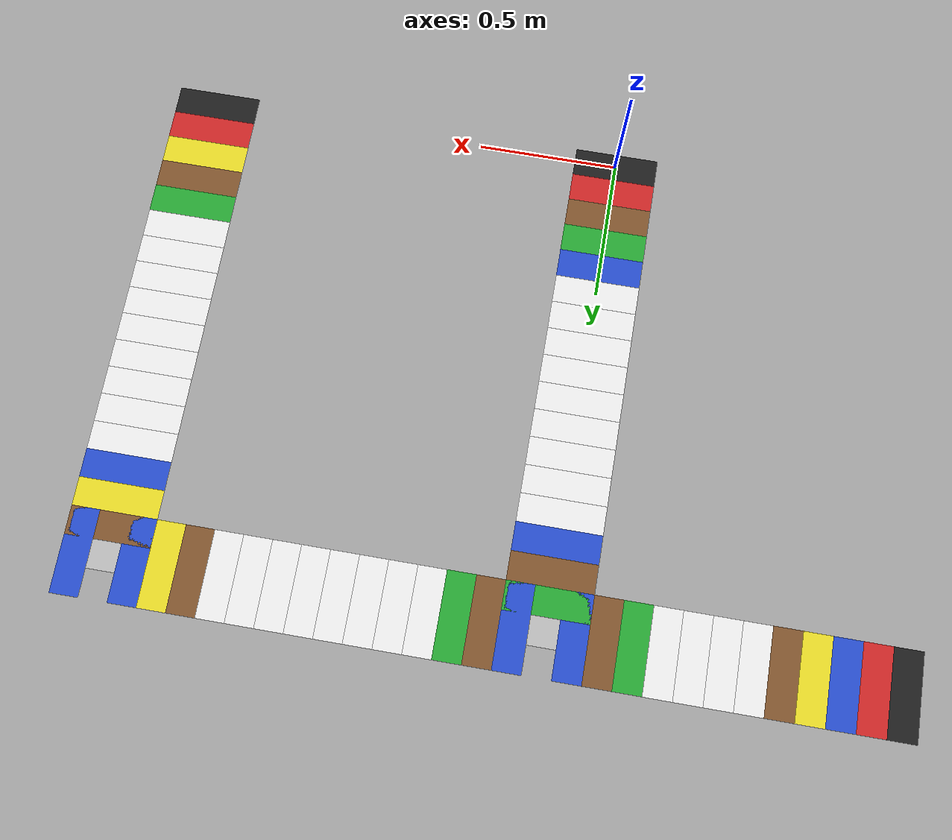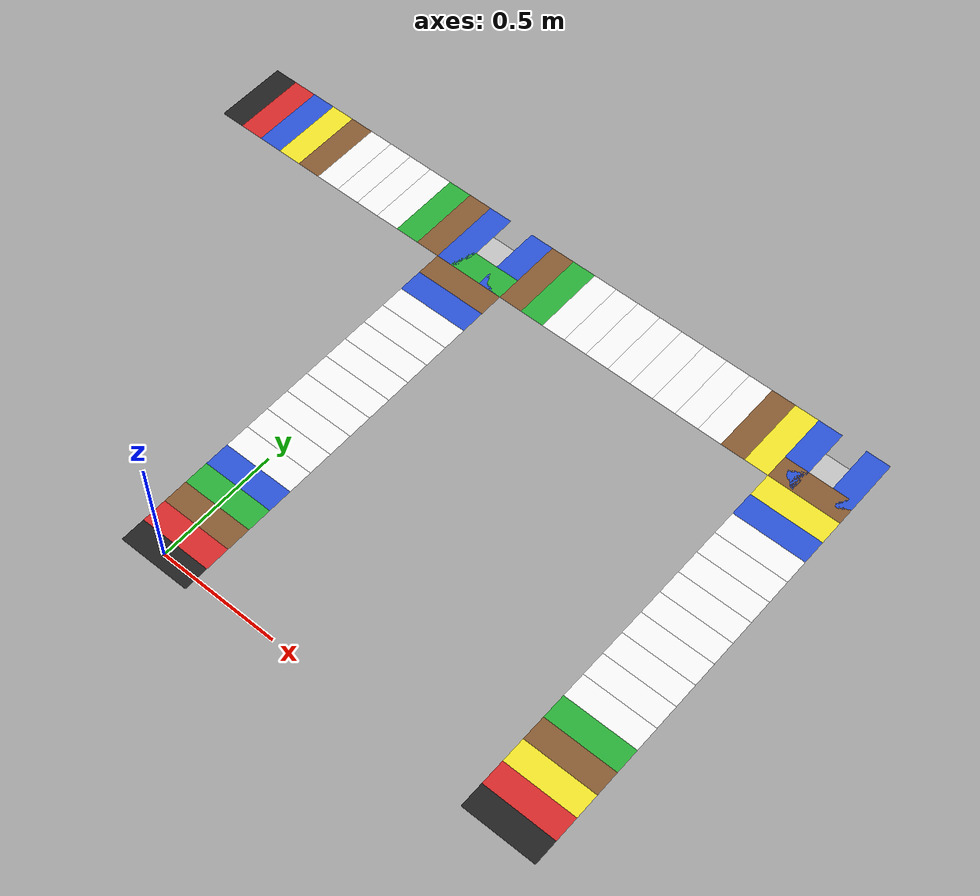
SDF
<sdf version="1.4">
 <world name="maskor_ev3_challenge">
  <model name="tileAC3">
   <pose>0 0 0.001 0 -0 0</pose>
   <static>1</static>
   <link name="link">
    <pose>0 0 0.001 0 -0 0</pose>
    <visual name="visual">
     <geometry><mesh><uri>model://maskor_ev3_tile/meshes/ev3_tile.dae</uri><scale>5 5 5</scale></mesh></geometry>
     <material>
      <script>
       <uri>model://maskor_ev3_tile/materials/scripts</uri>
       <uri>model://maskor_ev3_tile/materials/textures</uri>
       <name>black</name>
      </script>
     </material>
    </visual>
    <velocity_decay><linear>0</linear><angular>0</angular></velocity_decay>
   </link>
  </model>
  <model name="tileAC4">
   <pose>0 0.1 0.001 0 -0 0</pose>
   <static>1</static>
   <link name="link">
    <pose>0 0 0.001 0 -0 0</pose>
    <visual name="visual">
     <geometry><mesh><uri>model://maskor_ev3_tile/meshes/ev3_tile.dae</uri><scale>5 5 5</scale></mesh></geometry>
     <material>
      <script>
       <uri>model://maskor_ev3_tile/materials/scripts</uri>
       <uri>model://maskor_ev3_tile/materials/textures</uri>
       <name>red</name>
      </script>
     </material>
    </visual>
    <velocity_decay><linear>0</linear><angular>0</angular></velocity_decay>
   </link>
  </model>
  <model name="tileAC5">
   <pose>0 0.2 0.001 0 -0 0</pose>
   <static>1</static>
   <link name="link">
    <pose>0 0 0.001 0 -0 0</pose>
    <visual name="visual">
     <geometry><mesh><uri>model://maskor_ev3_tile/meshes/ev3_tile.dae</uri><scale>5 5 5</scale></mesh></geometry>
     <material>
      <script>
       <uri>model://maskor_ev3_tile/materials/scripts</uri>
       <uri>model://maskor_ev3_tile/materials/textures</uri>
       <name>brown</name>
      </script>
     </material>
    </visual>
    <velocity_decay><linear>0</linear><angular>0</angular></velocity_decay>
   </link>
  </model>
  <model name="tileAC6">
   <pose>0 0.3 0.001 0 -0 0</pose>
   <static>1</static>
   <link name="link">
    <pose>0 0 0.001 0 -0 0</pose>
    <visual name="visual">
     <geometry><mesh><uri>model://maskor_ev3_tile/meshes/ev3_tile.dae</uri><scale>5 5 5</scale></mesh></geometry>
     <material>
      <script>
       <uri>model://maskor_ev3_tile/materials/scripts</uri>
       <uri>model://maskor_ev3_tile/materials/textures</uri>
       <name>green</name>
      </script>
     </material>
    </visual>
    <velocity_decay><linear>0</linear><angular>0</angular></velocity_decay>
   </link>
  </model>
  <model name="tileAC7">
   <pose>0 0.4 0.001 0 -0 0</pose>
   <static>1</static>
   <link name="link">
    <pose>0 0 0.001 0 -0 0</pose>
    <visual name="visual">
     <geometry><mesh><uri>model://maskor_ev3_tile/meshes/ev3_tile.dae</uri><scale>5 5 5</scale></mesh></geometry>
     <material>
      <script>
       <uri>model://maskor_ev3_tile/materials/scripts</uri>
       <uri>model://maskor_ev3_tile/materials/textures</uri>
       <name>blue</name>
      </script>
     </material>
    </visual>
    <velocity_decay><linear>0</linear><angular>0</angular></velocity_decay>
   </link>
  </model>
  <model name="tileAC8">
   <pose>0 0.5 0.001 0 -0 0</pose>
   <static>1</static>
   <link name="link">
    <pose>0 0 0.001 0 -0 0</pose>
    <visual name="visual">
     <geometry><mesh><uri>model://maskor_ev3_tile/meshes/ev3_tile.dae</uri><scale>5 5 5</scale></mesh></geometry>
     <material>
      <script>
       <uri>model://maskor_ev3_tile/materials/scripts</uri>
       <uri>model://maskor_ev3_tile/materials/textures</uri>
       <name>white</name>
      </script>
     </material>
    </visual>
    <velocity_decay><linear>0</linear><angular>0</angular></velocity_decay>
   </link>
  </model>
  <model name="tileAC9">
   <pose>0 0.6 0.001 0 -0 0</pose>
   <static>1</static>
   <link name="link">
    <pose>0 0 0.001 0 -0 0</pose>
    <visual name="visual">
     <geometry><mesh><uri>model://maskor_ev3_tile/meshes/ev3_tile.dae</uri><scale>5 5 5</scale></mesh></geometry>
     <material>
      <script>
       <uri>model://maskor_ev3_tile/materials/scripts</uri>
       <uri>model://maskor_ev3_tile/materials/textures</uri>
       <name>white</name>
      </script>
     </material>
    </visual>
    <velocity_decay><linear>0</linear><angular>0</angular></velocity_decay>
   </link>
  </model>
  <model name="tileAC10">
   <pose>0 0.7 0.001 0 -0 0</pose>
   <static>1</static>
   <link name="link">
    <pose>0 0 0.001 0 -0 0</pose>
    <visual name="visual">
     <geometry><mesh><uri>model://maskor_ev3_tile/meshes/ev3_tile.dae</uri><scale>5 5 5</scale></mesh></geometry>
     <material>
      <script>
       <uri>model://maskor_ev3_tile/materials/scripts</uri>
       <uri>model://maskor_ev3_tile/materials/textures</uri>
       <name>white</name>
      </script>
     </material>
    </visual>
    <velocity_decay><linear>0</linear><angular>0</angular></velocity_decay>
   </link>
  </model>
  <model name="tileAC11">
   <pose>0 0.8 0.001 0 -0 0</pose>
   <static>1</static>
   <link name="link">
    <pose>0 0 0.001 0 -0 0</pose>
    <visual name="visual">
     <geometry><mesh><uri>model://maskor_ev3_tile/meshes/ev3_tile.dae</uri><scale>5 5 5</scale></mesh></geometry>
     <material>
      <script>
       <uri>model://maskor_ev3_tile/materials/scripts</uri>
       <uri>model://maskor_ev3_tile/materials/textures</uri>
       <name>white</name>
      </script>
     </material>
    </visual>
    <velocity_decay><linear>0</linear><angular>0</angular></velocity_decay>
   </link>
  </model>
  <model name="tileAC12">
   <pose>0 0.9 0.001 0 -0 0</pose>
   <static>1</static>
   <link name="link">
    <pose>0 0 0.001 0 -0 0</pose>
    <visual name="visual">
     <geometry><mesh><uri>model://maskor_ev3_tile/meshes/ev3_tile.dae</uri><scale>5 5 5</scale></mesh></geometry>
     <material>
      <script>
       <uri>model://maskor_ev3_tile/materials/scripts</uri>
       <uri>model://maskor_ev3_tile/materials/textures</uri>
       <name>white</name>
      </script>
     </material>
    </visual>
    <velocity_decay><linear>0</linear><angular>0</angular></velocity_decay>
   </link>
  </model>
  <model name="tileAC13">
   <pose>0 1 0.001 0 -0 0</pose>
   <static>1</static>
   <link name="link">
    <pose>0 0 0.001 0 -0 0</pose>
    <visual name="visual">
     <geometry><mesh><uri>model://maskor_ev3_tile/meshes/ev3_tile.dae</uri><scale>5 5 5</scale></mesh></geometry>
     <material>
      <script>
       <uri>model://maskor_ev3_tile/materials/scripts</uri>
       <uri>model://maskor_ev3_tile/materials/textures</uri>
       <name>white</name>
      </script>
     </material>
    </visual>
    <velocity_decay><linear>0</linear><angular>0</angular></velocity_decay>
   </link>
  </model>
  <model name="tileAC14">
   <pose>0 1.1 0.001 0 -0 0</pose>
   <static>1</static>
   <link name="link">
    <pose>0 0 0.001 0 -0 0</pose>
    <visual name="visual">
     <geometry><mesh><uri>model://maskor_ev3_tile/meshes/ev3_tile.dae</uri><scale>5 5 5</scale></mesh></geometry>
     <material>
      <script>
       <uri>model://maskor_ev3_tile/materials/scripts</uri>
       <uri>model://maskor_ev3_tile/materials/textures</uri>
       <name>white</name>
      </script>
     </material>
    </visual>
    <velocity_decay><linear>0</linear><angular>0</angular></velocity_decay>
   </link>
  </model>
  <model name="tileAC15">
   <pose>0 1.2 0.001 0 -0 0</pose>
   <static>1</static>
   <link name="link">
    <pose>0 0 0.001 0 -0 0</pose>
    <visual name="visual">
     <geometry><mesh><uri>model://maskor_ev3_tile/meshes/ev3_tile.dae</uri><scale>5 5 5</scale></mesh></geometry>
     <material>
      <script>
       <uri>model://maskor_ev3_tile/materials/scripts</uri>
       <uri>model://maskor_ev3_tile/materials/textures</uri>
       <name>white</name>
      </script>
     </material>
    </visual>
    <velocity_decay><linear>0</linear><angular>0</angular></velocity_decay>
   </link>
  </model>
  <model name="tileAC16">
   <pose>0 1.3 0.001 0 -0 0</pose>
   <static>1</static>
   <link name="link">
    <pose>0 0 0.001 0 -0 0</pose>
    <visual name="visual">
     <geometry><mesh><uri>model://maskor_ev3_tile/meshes/ev3_tile.dae</uri><scale>5 5 5</scale></mesh></geometry>
     <material>
      <script>
       <uri>model://maskor_ev3_tile/materials/scripts</uri>
       <uri>model://maskor_ev3_tile/materials/textures</uri>
       <name>white</name>
      </script>
     </material>
    </visual>
    <velocity_decay><linear>0</linear><angular>0</angular></velocity_decay>
   </link>
  </model>
  <model name="tileAC17">
   <pose>0 1.4 0.001 0 -0 0</pose>
   <static>1</static>
   <link name="link">
    <pose>0 0 0.001 0 -0 0</pose>
    <visual name="visual">
     <geometry><mesh><uri>model://maskor_ev3_tile/meshes/ev3_tile.dae</uri><scale>5 5 5</scale></mesh></geometry>
     <material>
      <script>
       <uri>model://maskor_ev3_tile/materials/scripts</uri>
       <uri>model://maskor_ev3_tile/materials/textures</uri>
       <name>blue</name>
      </script>
     </material>
    </visual>
    <velocity_decay><linear>0</linear><angular>0</angular></velocity_decay>
   </link>
  </model>
  <model name="tileAC18">
   <pose>0 1.5 0.001 0 -0 0</pose>
   <static>1</static>
   <link name="link">
    <pose>0 0 0.001 0 -0 0</pose>
    <visual name="visual">
     <geometry><mesh><uri>model://maskor_ev3_tile/meshes/ev3_tile.dae</uri><scale>5 5 5</scale></mesh></geometry>
     <material>
      <script>
       <uri>model://maskor_ev3_tile/materials/scripts</uri>
       <uri>model://maskor_ev3_tile/materials/textures</uri>
       <name>brown</name>
      </script>
     </material>
    </visual>
    <velocity_decay><linear>0</linear><angular>0</angular></velocity_decay>
   </link>
  </model>
  <model name="tileAC19">
   <pose>0 1.6 0.001 0 -0 0</pose>
   <static>1</static>
   <link name="link">
    <pose>0 0 0.001 0 -0 0</pose>
    <visual name="visual">
     <geometry><mesh><uri>model://maskor_ev3_tile/meshes/ev3_tile.dae</uri><scale>5 5 5</scale></mesh></geometry>
     <material>
      <script>
       <uri>model://maskor_ev3_tile/materials/scripts</uri>
       <uri>model://maskor_ev3_tile/materials/textures</uri>
       <name>green</name>
      </script>
     </material>
    </visual>
    <velocity_decay><linear>0</linear><angular>0</angular></velocity_decay>
   </link>
  </model>
  <model name="tileAC20">
   <pose>0 1.7 0.002 0 -0 0</pose>
   <static>1</static>
   <link name="link">
    <visual name="visual">
     <geometry>
      <mesh><uri>model://maskor_ev3_tile_center/meshes/ev3_tile_center.dae</uri><scale>5 5 5</scale></mesh>
     </geometry>
     <material>
      <script>
       <uri>model://maskor_ev3_tile_center/materials/scripts</uri>
       <uri>model://maskor_ev3_tile_center/materials/textures</uri>
       <name>center</name>
      </script>
     </material>
    </visual>
    <velocity_decay><linear>0</linear><angular>0</angular></velocity_decay>
   </link>
  </model>
  <model name="tileBD3">
   <pose>1.5 0 0.001 0 -0 0</pose>
   <static>1</static>
   <link name="link">
    <pose>0 0 0.001 0 -0 0</pose>
    <visual name="visual">
     <geometry><mesh><uri>model://maskor_ev3_tile/meshes/ev3_tile.dae</uri><scale>5 5 5</scale></mesh></geometry>
     <material>
      <script>
       <uri>model://maskor_ev3_tile/materials/scripts</uri>
       <uri>model://maskor_ev3_tile/materials/textures</uri>
       <name>black</name>
      </script>
     </material>
    </visual>
    <velocity_decay><linear>0</linear><angular>0</angular></velocity_decay>
   </link>
  </model>
  <model name="tileBD4">
   <pose>1.5 0.1 0.001 0 -0 0</pose>
   <static>1</static>
   <link name="link">
    <pose>0 0 0.001 0 -0 0</pose>
    <visual name="visual">
     <geometry><mesh><uri>model://maskor_ev3_tile/meshes/ev3_tile.dae</uri><scale>5 5 5</scale></mesh></geometry>
     <material>
      <script>
       <uri>model://maskor_ev3_tile/materials/scripts</uri>
       <uri>model://maskor_ev3_tile/materials/textures</uri>
       <name>red</name>
      </script>
     </material>
    </visual>
    <velocity_decay><linear>0</linear><angular>0</angular></velocity_decay>
   </link>
  </model>
  <model name="tileBD5">
   <pose>1.5 0.2 0.001 0 -0 0</pose>
   <static>1</static>
   <link name="link">
    <pose>0 0 0.001 0 -0 0</pose>
    <visual name="visual">
     <geometry><mesh><uri>model://maskor_ev3_tile/meshes/ev3_tile.dae</uri><scale>5 5 5</scale></mesh></geometry>
     <material>
      <script>
       <uri>model://maskor_ev3_tile/materials/scripts</uri>
       <uri>model://maskor_ev3_tile/materials/textures</uri>
       <name>yellow</name>
      </script>
     </material>
    </visual>
    <velocity_decay><linear>0</linear><angular>0</angular></velocity_decay>
   </link>
  </model>
  <model name="tileBD6">
   <pose>1.5 0.3 0.001 0 -0 0</pose>
   <static>1</static>
   <link name="link">
    <pose>0 0 0.001 0 -0 0</pose>
    <visual name="visual">
     <geometry><mesh><uri>model://maskor_ev3_tile/meshes/ev3_tile.dae</uri><scale>5 5 5</scale></mesh></geometry>
     <material>
      <script>
       <uri>model://maskor_ev3_tile/materials/scripts</uri>
       <uri>model://maskor_ev3_tile/materials/textures</uri>
       <name>brown</name>
      </script>
     </material>
    </visual>
    <velocity_decay><linear>0</linear><angular>0</angular></velocity_decay>
   </link>
  </model>
  <model name="tileBD7">
   <pose>1.5 0.4 0.001 0 -0 0</pose>
   <static>1</static>
   <link name="link">
    <pose>0 0 0.001 0 -0 0</pose>
    <visual name="visual">
     <geometry><mesh><uri>model://maskor_ev3_tile/meshes/ev3_tile.dae</uri><scale>5 5 5</scale></mesh></geometry>
     <material>
      <script>
       <uri>model://maskor_ev3_tile/materials/scripts</uri>
       <uri>model://maskor_ev3_tile/materials/textures</uri>
       <name>green</name>
      </script>
     </material>
    </visual>
    <velocity_decay><linear>0</linear><angular>0</angular></velocity_decay>
   </link>
  </model>
  <model name="tileBD8">
   <pose>1.5 0.5 0.001 0 -0 0</pose>
   <static>1</static>
   <link name="link">
    <pose>0 0 0.001 0 -0 0</pose>
    <visual name="visual">
     <geometry><mesh><uri>model://maskor_ev3_tile/meshes/ev3_tile.dae</uri><scale>5 5 5</scale></mesh></geometry>
     <material>
      <script>
       <uri>model://maskor_ev3_tile/materials/scripts</uri>
       <uri>model://maskor_ev3_tile/materials/textures</uri>
       <name>white</name>
      </script>
     </material>
    </visual>
    <velocity_decay><linear>0</linear><angular>0</angular></velocity_decay>
   </link>
  </model>
  <model name="tileBD9">
   <pose>1.5 0.6 0.001 0 -0 0</pose>
   <static>1</static>
   <link name="link">
    <pose>0 0 0.001 0 -0 0</pose>
    <visual name="visual">
     <geometry><mesh><uri>model://maskor_ev3_tile/meshes/ev3_tile.dae</uri><scale>5 5 5</scale></mesh></geometry>
     <material>
      <script>
       <uri>model://maskor_ev3_tile/materials/scripts</uri>
       <uri>model://maskor_ev3_tile/materials/textures</uri>
       <name>white</name>
      </script>
     </material>
    </visual>
    <velocity_decay><linear>0</linear><angular>0</angular></velocity_decay>
   </link>
  </model>
  <model name="tileBD10">
   <pose>1.5 0.7 0.001 0 -0 0</pose>
   <static>1</static>
   <link name="link">
    <pose>0 0 0.001 0 -0 0</pose>
    <visual name="visual">
     <geometry><mesh><uri>model://maskor_ev3_tile/meshes/ev3_tile.dae</uri><scale>5 5 5</scale></mesh></geometry>
     <material>
      <script>
       <uri>model://maskor_ev3_tile/materials/scripts</uri>
       <uri>model://maskor_ev3_tile/materials/textures</uri>
       <name>white</name>
      </script>
     </material>
    </visual>
    <velocity_decay><linear>0</linear><angular>0</angular></velocity_decay>
   </link>
  </model>
  <model name="tileBD11">
   <pose>1.5 0.8 0.001 0 -0 0</pose>
   <static>1</static>
   <link name="link">
    <pose>0 0 0.001 0 -0 0</pose>
    <visual name="visual">
     <geometry><mesh><uri>model://maskor_ev3_tile/meshes/ev3_tile.dae</uri><scale>5 5 5</scale></mesh></geometry>
     <material>
      <script>
       <uri>model://maskor_ev3_tile/materials/scripts</uri>
       <uri>model://maskor_ev3_tile/materials/textures</uri>
       <name>white</name>
      </script>
     </material>
    </visual>
    <velocity_decay><linear>0</linear><angular>0</angular></velocity_decay>
   </link>
  </model>
  <model name="tileBD12">
   <pose>1.5 0.9 0.001 0 -0 0</pose>
   <static>1</static>
   <link name="link">
    <pose>0 0 0.001 0 -0 0</pose>
    <visual name="visual">
     <geometry><mesh><uri>model://maskor_ev3_tile/meshes/ev3_tile.dae</uri><scale>5 5 5</scale></mesh></geometry>
     <material>
      <script>
       <uri>model://maskor_ev3_tile/materials/scripts</uri>
       <uri>model://maskor_ev3_tile/materials/textures</uri>
       <name>white</name>
      </script>
     </material>
    </visual>
    <velocity_decay><linear>0</linear><angular>0</angular></velocity_decay>
   </link>
  </model>
  <model name="tileBD13">
   <pose>1.5 1 0.001 0 -0 0</pose>
   <static>1</static>
   <link name="link">
    <pose>0 0 0.001 0 -0 0</pose>
    <visual name="visual">
     <geometry><mesh><uri>model://maskor_ev3_tile/meshes/ev3_tile.dae</uri><scale>5 5 5</scale></mesh></geometry>
     <material>
      <script>
       <uri>model://maskor_ev3_tile/materials/scripts</uri>
       <uri>model://maskor_ev3_tile/materials/textures</uri>
       <name>white</name>
      </script>
     </material>
    </visual>
    <velocity_decay><linear>0</linear><angular>0</angular></velocity_decay>
   </link>
  </model>
  <model name="tileBD14">
   <pose>1.5 1.1 0.001 0 -0 0</pose>
   <static>1</static>
   <link name="link">
    <pose>0 0 0.001 0 -0 0</pose>
    <visual name="visual">
     <geometry><mesh><uri>model://maskor_ev3_tile/meshes/ev3_tile.dae</uri><scale>5 5 5</scale></mesh></geometry>
     <material>
      <script>
       <uri>model://maskor_ev3_tile/materials/scripts</uri>
       <uri>model://maskor_ev3_tile/materials/textures</uri>
       <name>white</name>
      </script>
     </material>
    </visual>
    <velocity_decay><linear>0</linear><angular>0</angular></velocity_decay>
   </link>
  </model>
  <model name="tileBD15">
   <pose>1.5 1.2 0.001 0 -0 0</pose>
   <static>1</static>
   <link name="link">
    <pose>0 0 0.001 0 -0 0</pose>
    <visual name="visual">
     <geometry><mesh><uri>model://maskor_ev3_tile/meshes/ev3_tile.dae</uri><scale>5 5 5</scale></mesh></geometry>
     <material>
      <script>
       <uri>model://maskor_ev3_tile/materials/scripts</uri>
       <uri>model://maskor_ev3_tile/materials/textures</uri>
       <name>white</name>
      </script>
     </material>
    </visual>
    <velocity_decay><linear>0</linear><angular>0</angular></velocity_decay>
   </link>
  </model>
  <model name="tileBD16">
   <pose>1.5 1.3 0.001 0 -0 0</pose>
   <static>1</static>
   <link name="link">
    <pose>0 0 0.001 0 -0 0</pose>
    <visual name="visual">
     <geometry><mesh><uri>model://maskor_ev3_tile/meshes/ev3_tile.dae</uri><scale>5 5 5</scale></mesh></geometry>
     <material>
      <script>
       <uri>model://maskor_ev3_tile/materials/scripts</uri>
       <uri>model://maskor_ev3_tile/materials/textures</uri>
       <name>white</name>
      </script>
     </material>
    </visual>
    <velocity_decay><linear>0</linear><angular>0</angular></velocity_decay>
   </link>
  </model>
  <model name="tileBD17">
   <pose>1.5 1.4 0.001 0 -0 0</pose>
   <static>1</static>
   <link name="link">
    <pose>0 0 0.001 0 -0 0</pose>
    <visual name="visual">
     <geometry><mesh><uri>model://maskor_ev3_tile/meshes/ev3_tile.dae</uri><scale>5 5 5</scale></mesh></geometry>
     <material>
      <script>
       <uri>model://maskor_ev3_tile/materials/scripts</uri>
       <uri>model://maskor_ev3_tile/materials/textures</uri>
       <name>blue</name>
      </script>
     </material>
    </visual>
    <velocity_decay><linear>0</linear><angular>0</angular></velocity_decay>
   </link>
  </model>
  <model name="tileBD18">
   <pose>1.5 1.5 0.001 0 -0 0</pose>
   <static>1</static>
   <link name="link">
    <pose>0 0 0.001 0 -0 0</pose>
    <visual name="visual">
     <geometry><mesh><uri>model://maskor_ev3_tile/meshes/ev3_tile.dae</uri><scale>5 5 5</scale></mesh></geometry>
     <material>
      <script>
       <uri>model://maskor_ev3_tile/materials/scripts</uri>
       <uri>model://maskor_ev3_tile/materials/textures</uri>
       <name>yellow</name>
      </script>
     </material>
    </visual>
    <velocity_decay><linear>0</linear><angular>0</angular></velocity_decay>
   </link>
  </model>
  <model name="tileBD19">
   <pose>1.5 1.6 0.001 0 -0 0</pose>
   <static>1</static>
   <link name="link">
    <pose>0 0 0.001 0 -0 0</pose>
    <visual name="visual">
     <geometry><mesh><uri>model://maskor_ev3_tile/meshes/ev3_tile.dae</uri><scale>5 5 5</scale></mesh></geometry>
     <material>
      <script>
       <uri>model://maskor_ev3_tile/materials/scripts</uri>
       <uri>model://maskor_ev3_tile/materials/textures</uri>
       <name>brown</name>
      </script>
     </material>
    </visual>
    <velocity_decay><linear>0</linear><angular>0</angular></velocity_decay>
   </link>
  </model>
  <model name="tileBD20">
   <pose>1.5 1.7 0.002 0 -0 0</pose>
   <static>1</static>
   <link name="link">
    <visual name="visual">
     <geometry>
      <mesh><uri>model://maskor_ev3_tile_center/meshes/ev3_tile_center.dae</uri><scale>5 5 5</scale></mesh>
     </geometry>
     <material>
      <script>
       <uri>model://maskor_ev3_tile_center/materials/scripts</uri>
       <uri>model://maskor_ev3_tile_center/materials/textures</uri>
       <name>center</name>
      </script>
     </material>
    </visual>
    <velocity_decay><linear>0</linear><angular>0</angular></velocity_decay>
   </link>
  </model>
  <model name="tileEF3">
   <pose>-1.2 1.7 0.001 0 -0 1.5708</pose>
   <static>1</static>
   <link name="link">
    <pose>0 0 0.001 0 -0 0</pose>
    <visual name="visual">
     <geometry><mesh><uri>model://maskor_ev3_tile/meshes/ev3_tile.dae</uri><scale>5 5 5</scale></mesh></geometry>
     <material>
      <script>
       <uri>model://maskor_ev3_tile/materials/scripts</uri>
       <uri>model://maskor_ev3_tile/materials/textures</uri>
       <name>black</name>
      </script>
     </material>
    </visual>
    <velocity_decay><linear>0</linear><angular>0</angular></velocity_decay>
   </link>
  </model>
  <model name="tileEF4">
   <pose>-1.1 1.7 0.001 0 -0 1.5708</pose>
   <static>1</static>
   <link name="link">
    <pose>0 0 0.001 0 -0 0</pose>
    <visual name="visual">
     <geometry><mesh><uri>model://maskor_ev3_tile/meshes/ev3_tile.dae</uri><scale>5 5 5</scale></mesh></geometry>
     <material>
      <script>
       <uri>model://maskor_ev3_tile/materials/scripts</uri>
       <uri>model://maskor_ev3_tile/materials/textures</uri>
       <name>red</name>
      </script>
     </material>
    </visual>
    <velocity_decay><linear>0</linear><angular>0</angular></velocity_decay>
   </link>
  </model>
  <model name="tileEF8">
   <pose>-0.7 1.7 0.001 0 -0 1.5708</pose>
   <static>1</static>
   <link name="link">
    <pose>0 0 0.001 0 -0 0</pose>
    <visual name="visual">
     <geometry><mesh><uri>model://maskor_ev3_tile/meshes/ev3_tile.dae</uri><scale>5 5 5</scale></mesh></geometry>
     <material>
      <script>
       <uri>model://maskor_ev3_tile/materials/scripts</uri>
       <uri>model://maskor_ev3_tile/materials/textures</uri>
       <name>white</name>
      </script>
     </material>
    </visual>
    <velocity_decay><linear>0</linear><angular>0</angular></velocity_decay>
   </link>
  </model>
  <model name="tileEF5">
   <pose>-1 1.7 0.001 0 -0 1.5708</pose>
   <static>1</static>
   <link name="link">
    <pose>0 0 0.001 0 -0 0</pose>
    <visual name="visual">
     <geometry><mesh><uri>model://maskor_ev3_tile/meshes/ev3_tile.dae</uri><scale>5 5 5</scale></mesh></geometry>
     <material>
      <script>
       <uri>model://maskor_ev3_tile/materials/scripts</uri>
       <uri>model://maskor_ev3_tile/materials/textures</uri>
       <name>blue</name>
      </script>
     </material>
    </visual>
    <velocity_decay><linear>0</linear><angular>0</angular></velocity_decay>
   </link>
  </model>
  <model name="tileEF10">
   <pose>-0.5 1.7 0.001 0 -0 1.5708</pose>
   <static>1</static>
   <link name="link">
    <pose>0 0 0.001 0 -0 0</pose>
    <visual name="visual">
     <geometry><mesh><uri>model://maskor_ev3_tile/meshes/ev3_tile.dae</uri><scale>5 5 5</scale></mesh></geometry>
     <material>
      <script>
       <uri>model://maskor_ev3_tile/materials/scripts</uri>
       <uri>model://maskor_ev3_tile/materials/textures</uri>
       <name>white</name>
      </script>
     </material>
    </visual>
    <velocity_decay><linear>0</linear><angular>0</angular></velocity_decay>
   </link>
  </model>
  <model name="tileEF6">
   <pose>-0.9 1.7 0.001 0 -0 1.5708</pose>
   <static>1</static>
   <link name="link">
    <pose>0 0 0.001 0 -0 0</pose>
    <visual name="visual">
     <geometry><mesh><uri>model://maskor_ev3_tile/meshes/ev3_tile.dae</uri><scale>5 5 5</scale></mesh></geometry>
     <material>
      <script>
       <uri>model://maskor_ev3_tile/materials/scripts</uri>
       <uri>model://maskor_ev3_tile/materials/textures</uri>
       <name>yellow</name>
      </script>
     </material>
    </visual>
    <velocity_decay><linear>0</linear><angular>0</angular></velocity_decay>
   </link>
  </model>
  <model name="tileEF7">
   <pose>-0.8 1.7 0.001 0 -0 1.5708</pose>
   <static>1</static>
   <link name="link">
    <pose>0 0 0.001 0 -0 0</pose>
    <visual name="visual">
     <geometry><mesh><uri>model://maskor_ev3_tile/meshes/ev3_tile.dae</uri><scale>5 5 5</scale></mesh></geometry>
     <material>
      <script>
       <uri>model://maskor_ev3_tile/materials/scripts</uri>
       <uri>model://maskor_ev3_tile/materials/textures</uri>
       <name>brown</name>
      </script>
     </material>
    </visual>
    <velocity_decay><linear>0</linear><angular>0</angular></velocity_decay>
   </link>
  </model>
  <model name="tileEF9">
   <pose>-0.6 1.7 0.001 0 -0 1.5708</pose>
   <static>1</static>
   <link name="link">
    <pose>0 0 0.001 0 -0 0</pose>
    <visual name="visual">
     <geometry><mesh><uri>model://maskor_ev3_tile/meshes/ev3_tile.dae</uri><scale>5 5 5</scale></mesh></geometry>
     <material>
      <script>
       <uri>model://maskor_ev3_tile/materials/scripts</uri>
       <uri>model://maskor_ev3_tile/materials/textures</uri>
       <name>white</name>
      </script>
     </material>
    </visual>
    <velocity_decay><linear>0</linear><angular>0</angular></velocity_decay>
   </link>
  </model>
  <model name="tileEF11">
   <pose>-0.4 1.7 0.001 0 -0 1.5708</pose>
   <static>1</static>
   <link name="link">
    <pose>0 0 0.001 0 -0 0</pose>
    <visual name="visual">
     <geometry><mesh><uri>model://maskor_ev3_tile/meshes/ev3_tile.dae</uri><scale>5 5 5</scale></mesh></geometry>
     <material>
      <script>
       <uri>model://maskor_ev3_tile/materials/scripts</uri>
       <uri>model://maskor_ev3_tile/materials/textures</uri>
       <name>white</name>
      </script>
     </material>
    </visual>
    <velocity_decay><linear>0</linear><angular>0</angular></velocity_decay>
   </link>
  </model>
  <model name="tileEF12">
   <pose>-0.3 1.7 0.001 0 -0 1.5708</pose>
   <static>1</static>
   <link name="link">
    <pose>0 0 0.001 0 -0 0</pose>
    <visual name="visual">
     <geometry><mesh><uri>model://maskor_ev3_tile/meshes/ev3_tile.dae</uri><scale>5 5 5</scale></mesh></geometry>
     <material>
      <script>
       <uri>model://maskor_ev3_tile/materials/scripts</uri>
       <uri>model://maskor_ev3_tile/materials/textures</uri>
       <name>green</name>
      </script>
     </material>
    </visual>
    <velocity_decay><linear>0</linear><angular>0</angular></velocity_decay>
   </link>
  </model>
  <model name="tileEF13">
   <pose>-0.2 1.7 0.001 0 -0 1.5708</pose>
   <static>1</static>
   <link name="link">
    <pose>0 0 0.001 0 -0 0</pose>
    <visual name="visual">
     <geometry><mesh><uri>model://maskor_ev3_tile/meshes/ev3_tile.dae</uri><scale>5 5 5</scale></mesh></geometry>
     <material>
      <script>
       <uri>model://maskor_ev3_tile/materials/scripts</uri>
       <uri>model://maskor_ev3_tile/materials/textures</uri>
       <name>brown</name>
      </script>
     </material>
    </visual>
    <velocity_decay><linear>0</linear><angular>0</angular></velocity_decay>
   </link>
  </model>
  <model name="tileEF14">
   <pose>-0.1 1.7 0.001 0 -0 1.5708</pose>
   <static>1</static>
   <link name="link">
    <pose>0 0 0.001 0 -0 0</pose>
    <visual name="visual">
     <geometry><mesh><uri>model://maskor_ev3_tile/meshes/ev3_tile.dae</uri><scale>5 5 5</scale></mesh></geometry>
     <material>
      <script>
       <uri>model://maskor_ev3_tile/materials/scripts</uri>
       <uri>model://maskor_ev3_tile/materials/textures</uri>
       <name>blue</name>
      </script>
     </material>
    </visual>
    <velocity_decay><linear>0</linear><angular>0</angular></velocity_decay>
   </link>
  </model>
  <model name="tileEF16">
   <pose>0.1 1.7 0.001 0 -0 1.5708</pose>
   <static>1</static>
   <link name="link">
    <pose>0 0 0.001 0 -0 0</pose>
    <visual name="visual">
     <geometry><mesh><uri>model://maskor_ev3_tile/meshes/ev3_tile.dae</uri><scale>5 5 5</scale></mesh></geometry>
     <material>
      <script>
       <uri>model://maskor_ev3_tile/materials/scripts</uri>
       <uri>model://maskor_ev3_tile/materials/textures</uri>
       <name>blue</name>
      </script>
     </material>
    </visual>
    <velocity_decay><linear>0</linear><angular>0</angular></velocity_decay>
   </link>
  </model>
  <model name="tileEF17">
   <pose>0.2 1.7 0.001 0 -0 1.5708</pose>
   <static>1</static>
   <link name="link">
    <pose>0 0 0.001 0 -0 0</pose>
    <visual name="visual">
     <geometry><mesh><uri>model://maskor_ev3_tile/meshes/ev3_tile.dae</uri><scale>5 5 5</scale></mesh></geometry>
     <material>
      <script>
       <uri>model://maskor_ev3_tile/materials/scripts</uri>
       <uri>model://maskor_ev3_tile/materials/textures</uri>
       <name>brown</name>
      </script>
     </material>
    </visual>
    <velocity_decay><linear>0</linear><angular>0</angular></velocity_decay>
   </link>
  </model>
  <model name="tileEF18">
   <pose>0.3 1.7 0.001 0 -0 1.5708</pose>
   <static>1</static>
   <link name="link">
    <pose>0 0 0.001 0 -0 0</pose>
    <visual name="visual">
     <geometry><mesh><uri>model://maskor_ev3_tile/meshes/ev3_tile.dae</uri><scale>5 5 5</scale></mesh></geometry>
     <material>
      <script>
       <uri>model://maskor_ev3_tile/materials/scripts</uri>
       <uri>model://maskor_ev3_tile/materials/textures</uri>
       <name>green</name>
      </script>
     </material>
    </visual>
    <velocity_decay><linear>0</linear><angular>0</angular></velocity_decay>
   </link>
  </model>
  <model name="tileEF19">
   <pose>0.4 1.7 0.001 0 -0 1.5708</pose>
   <static>1</static>
   <link name="link">
    <pose>0 0 0.001 0 -0 0</pose>
    <visual name="visual">
     <geometry><mesh><uri>model://maskor_ev3_tile/meshes/ev3_tile.dae</uri><scale>5 5 5</scale></mesh></geometry>
     <material>
      <script>
       <uri>model://maskor_ev3_tile/materials/scripts</uri>
       <uri>model://maskor_ev3_tile/materials/textures</uri>
       <name>white</name>
      </script>
     </material>
    </visual>
    <velocity_decay><linear>0</linear><angular>0</angular></velocity_decay>
   </link>
  </model>
  <model name="tileEF20">
   <pose>0.5 1.7 0.001 0 -0 1.5708</pose>
   <static>1</static>
   <link name="link">
    <pose>0 0 0.001 0 -0 0</pose>
    <visual name="visual">
     <geometry><mesh><uri>model://maskor_ev3_tile/meshes/ev3_tile.dae</uri><scale>5 5 5</scale></mesh></geometry>
     <material>
      <script>
       <uri>model://maskor_ev3_tile/materials/scripts</uri>
       <uri>model://maskor_ev3_tile/materials/textures</uri>
       <name>white</name>
      </script>
     </material>
    </visual>
    <velocity_decay><linear>0</linear><angular>0</angular></velocity_decay>
   </link>
  </model>
  <model name="tileEF21">
   <pose>0.6 1.7 0.001 0 -0 1.5708</pose>
   <static>1</static>
   <link name="link">
    <pose>0 0 0.001 0 -0 0</pose>
    <visual name="visual">
     <geometry><mesh><uri>model://maskor_ev3_tile/meshes/ev3_tile.dae</uri><scale>5 5 5</scale></mesh></geometry>
     <material>
      <script>
       <uri>model://maskor_ev3_tile/materials/scripts</uri>
       <uri>model://maskor_ev3_tile/materials/textures</uri>
       <name>white</name>
      </script>
     </material>
    </visual>
    <velocity_decay><linear>0</linear><angular>0</angular></velocity_decay>
   </link>
  </model>
  <model name="tileEF22">
   <pose>0.7 1.7 0.001 0 -0 1.5708</pose>
   <static>1</static>
   <link name="link">
    <pose>0 0 0.001 0 -0 0</pose>
    <visual name="visual">
     <geometry><mesh><uri>model://maskor_ev3_tile/meshes/ev3_tile.dae</uri><scale>5 5 5</scale></mesh></geometry>
     <material>
      <script>
       <uri>model://maskor_ev3_tile/materials/scripts</uri>
       <uri>model://maskor_ev3_tile/materials/textures</uri>
       <name>white</name>
      </script>
     </material>
    </visual>
    <velocity_decay><linear>0</linear><angular>0</angular></velocity_decay>
   </link>
  </model>
  <model name="tileEF23">
   <pose>0.8 1.7 0.001 0 -0 1.5708</pose>
   <static>1</static>
   <link name="link">
    <pose>0 0 0.001 0 -0 0</pose>
    <visual name="visual">
     <geometry><mesh><uri>model://maskor_ev3_tile/meshes/ev3_tile.dae</uri><scale>5 5 5</scale></mesh></geometry>
     <material>
      <script>
       <uri>model://maskor_ev3_tile/materials/scripts</uri>
       <uri>model://maskor_ev3_tile/materials/textures</uri>
       <name>white</name>
      </script>
     </material>
    </visual>
    <velocity_decay><linear>0</linear><angular>0</angular></velocity_decay>
   </link>
  </model>
  <model name="tileEF24">
   <pose>0.9 1.7 0.001 0 -0 1.5708</pose>
   <static>1</static>
   <link name="link">
    <pose>0 0 0.001 0 -0 0</pose>
    <visual name="visual">
     <geometry><mesh><uri>model://maskor_ev3_tile/meshes/ev3_tile.dae</uri><scale>5 5 5</scale></mesh></geometry>
     <material>
      <script>
       <uri>model://maskor_ev3_tile/materials/scripts</uri>
       <uri>model://maskor_ev3_tile/materials/textures</uri>
       <name>white</name>
      </script>
     </material>
    </visual>
    <velocity_decay><linear>0</linear><angular>0</angular></velocity_decay>
   </link>
  </model>
  <model name="tileEF25">
   <pose>1 1.7 0.001 0 -0 1.5708</pose>
   <static>1</static>
   <link name="link">
    <pose>0 0 0.001 0 -0 0</pose>
    <visual name="visual">
     <geometry><mesh><uri>model://maskor_ev3_tile/meshes/ev3_tile.dae</uri><scale>5 5 5</scale></mesh></geometry>
     <material>
      <script>
       <uri>model://maskor_ev3_tile/materials/scripts</uri>
       <uri>model://maskor_ev3_tile/materials/textures</uri>
       <name>white</name>
      </script>
     </material>
    </visual>
    <velocity_decay><linear>0</linear><angular>0</angular></velocity_decay>
   </link>
  </model>
  <model name="tileEF26">
   <pose>1.1 1.7 0.001 0 -0 1.5708</pose>
   <static>1</static>
   <link name="link">
    <pose>0 0 0.001 0 -0 0</pose>
    <visual name="visual">
     <geometry><mesh><uri>model://maskor_ev3_tile/meshes/ev3_tile.dae</uri><scale>5 5 5</scale></mesh></geometry>
     <material>
      <script>
       <uri>model://maskor_ev3_tile/materials/scripts</uri>
       <uri>model://maskor_ev3_tile/materials/textures</uri>
       <name>white</name>
      </script>
     </material>
    </visual>
    <velocity_decay><linear>0</linear><angular>0</angular></velocity_decay>
   </link>
  </model>
  <model name="tileEF27">
   <pose>1.2 1.7 0.001 0 -0 1.5708</pose>
   <static>1</static>
   <link name="link">
    <pose>0 0 0.001 0 -0 0</pose>
    <visual name="visual">
     <geometry><mesh><uri>model://maskor_ev3_tile/meshes/ev3_tile.dae</uri><scale>5 5 5</scale></mesh></geometry>
     <material>
      <script>
       <uri>model://maskor_ev3_tile/materials/scripts</uri>
       <uri>model://maskor_ev3_tile/materials/textures</uri>
       <name>brown</name>
      </script>
     </material>
    </visual>
    <velocity_decay><linear>0</linear><angular>0</angular></velocity_decay>
   </link>
  </model>
  <model name="tileEF28">
   <pose>1.3 1.7 0.001 0 -0 1.5708</pose>
   <static>1</static>
   <link name="link">
    <pose>0 0 0.001 0 -0 0</pose>
    <visual name="visual">
     <geometry><mesh><uri>model://maskor_ev3_tile/meshes/ev3_tile.dae</uri><scale>5 5 5</scale></mesh></geometry>
     <material>
      <script>
       <uri>model://maskor_ev3_tile/materials/scripts</uri>
       <uri>model://maskor_ev3_tile/materials/textures</uri>
       <name>yellow</name>
      </script>
     </material>
    </visual>
    <velocity_decay><linear>0</linear><angular>0</angular></velocity_decay>
   </link>
  </model>
  <model name="tileEF29">
   <pose>1.4 1.7 0.001 0 -0 1.5708</pose>
   <static>1</static>
   <link name="link">
    <pose>0 0 0.001 0 -0 0</pose>
    <visual name="visual">
     <geometry><mesh><uri>model://maskor_ev3_tile/meshes/ev3_tile.dae</uri><scale>5 5 5</scale></mesh></geometry>
     <material>
      <script>
       <uri>model://maskor_ev3_tile/materials/scripts</uri>
       <uri>model://maskor_ev3_tile/materials/textures</uri>
       <name>blue</name>
      </script>
     </material>
    </visual>
    <velocity_decay><linear>0</linear><angular>0</angular></velocity_decay>
   </link>
  </model>
  <model name="tileEF31">
   <pose>1.6 1.7 0.001 0 -0 1.5708</pose>
   <static>1</static>
   <link name="link">
    <pose>0 0 0.001 0 -0 0</pose>
    <visual name="visual">
     <geometry><mesh><uri>model://maskor_ev3_tile/meshes/ev3_tile.dae</uri><scale>5 5 5</scale></mesh></geometry>
     <material>
      <script>
       <uri>model://maskor_ev3_tile/materials/scripts</uri>
       <uri>model://maskor_ev3_tile/materials/textures</uri>
       <name>blue</name>
      </script>
     </material>
    </visual>
    <velocity_decay><linear>0</linear><angular>0</angular></velocity_decay>
   </link>
  </model>
 </world>
</sdf>
